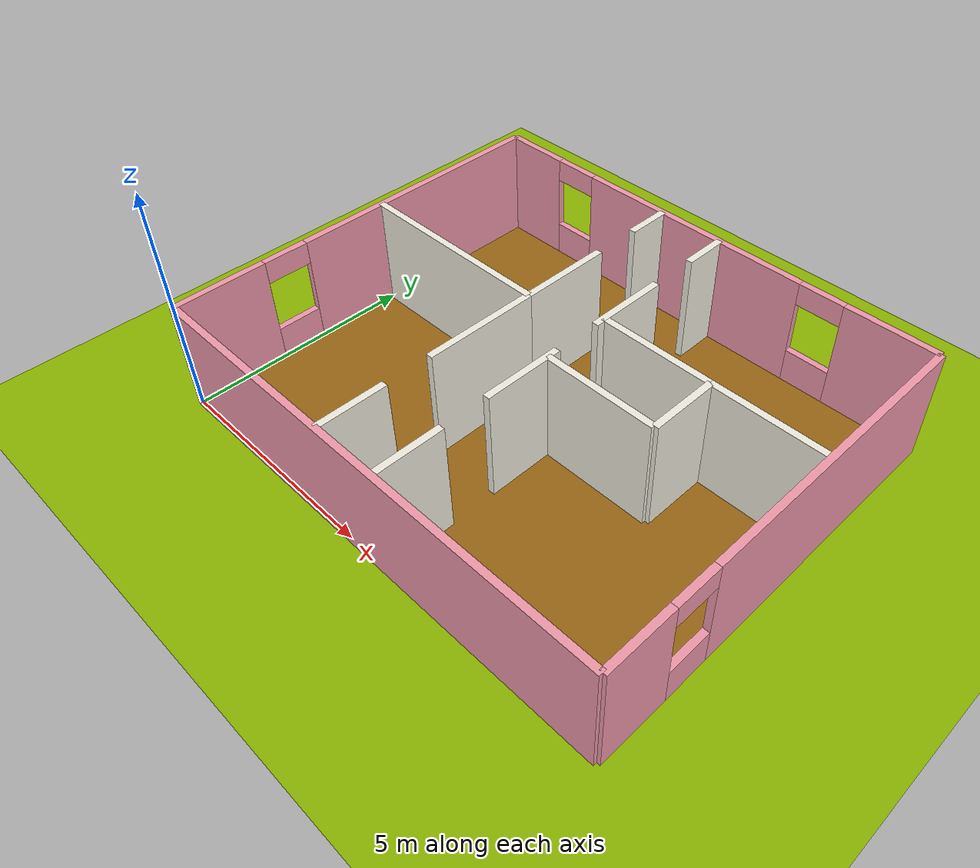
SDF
<sdf version="1.10">
 <world name="casa">
  <physics name="1ms" type="ignored">
   <max_step_size>0.001</max_step_size>
   <real_time_factor>1</real_time_factor>
   <real_time_update_rate>1000</real_time_update_rate>
  </physics>
  <plugin name="gz::sim::systems::Physics" filename="gz-sim-physics-system"/>
  <plugin name="gz::sim::systems::UserCommands" filename="gz-sim-user-commands-system"/>
  <plugin name="gz::sim::systems::SceneBroadcaster" filename="gz-sim-scene-broadcaster-system"/>
  <plugin filename="gz-sim-sensors-system" name="gz::sim::systems::Sensors">
   <render_engine>ogre2</render_engine>
  </plugin>
  <plugin filename="gz-sim-imu-system" name="gz::sim::systems::Imu"/>
  <gravity>0 0 -9.8000000000000007</gravity>
  <magnetic_field>5.5644999999999998e-06 2.2875799999999999e-05 -4.2388400000000002e-05</magnetic_field>
  <atmosphere type="adiabatic"/>
  <scene>
   <ambient>0.400000006 0.400000006 0.400000006 1</ambient>
   <background>0.699999988 0.699999988 0.699999988 1</background>
   <shadows>true</shadows>
  </scene>
  <model name="ground_plane">
   <static>true</static>
   <link name="link">
    <collision name="collision">
     <geometry><plane><normal>0 0 1</normal><size>1 1</size></plane></geometry>
    </collision>
    <visual name="visual">
     <geometry><plane><normal>0 0 1</normal><size>100 100</size></plane></geometry>
     <material>
      <ambient>0.550000012 0.709999979 0 1</ambient>
      <diffuse>0.550000012 0.709999979 0 1</diffuse>
     </material>
    </visual>
    <inertial>
     <mass>1</mass>
     <inertia><ixx>1</ixx><ixy>0</ixy><ixz>0</ixz><iyy>1</iyy><iyz>0</iyz><izz>1</izz></inertia>
    </inertial>
   </link>
  </model>
  <model name="floor">
   <static>true</static>
   <pose>5.4443202018737793 4.5 0.0099999997764825821 0 0 0</pose>
   <link name="link">
    <visual name="visual">
     <geometry><box><size>11 9 0.02</size></box></geometry>
     <material>
      <ambient>0.600000024 0.400000006 0.0799999982 1</ambient>
      <diffuse>0.600000024 0.400000006 0.0799999982 1</diffuse>
     </material>
    </visual>
    <inertial>
     <mass>1</mass>
     <inertia><ixx>1</ixx><ixy>0</ixy><ixz>0</ixz><iyy>1</iyy><iyz>0</iyz><izz>1</izz></inertia>
    </inertial>
   </link>
  </model>
  <model name="wall_ext_bottom">
   <static>true</static>
   <pose>5.5 0 1.25 0 0 0</pose>
   <link name="link">
    <collision name="collision">
     <geometry><box><size>11 0.14999999999999999 2.5</size></box></geometry>
    </collision>
    <visual name="visual">
     <geometry><box><size>11 0.14999999999999999 2.5</size></box></geometry>
     <material>
      <ambient>0.939999998 0.600000024 0.670000017 1</ambient>
      <diffuse>0.939999998 0.600000024 0.670000017 1</diffuse>
     </material>
    </visual>
    <inertial>
     <mass>1</mass>
     <inertia><ixx>1</ixx><ixy>0</ixy><ixz>0</ixz><iyy>1</iyy><iyz>0</iyz><izz>1</izz></inertia>
    </inertial>
   </link>
  </model>
  <model name="wall_ext_top_1">
   <static>true</static>
   <pose>0.75 9 1.25 0 0 0</pose>
   <link name="link">
    <collision name="collision">
     <geometry><box><size>1.5 0.14999999999999999 2.5</size></box></geometry>
    </collision>
    <visual name="visual">
     <geometry><box><size>1.5 0.14999999999999999 2.5</size></box></geometry>
     <material>
      <ambient>0.939999998 0.600000024 0.670000017 1</ambient>
      <diffuse>0.939999998 0.600000024 0.670000017 1</diffuse>
     </material>
    </visual>
    <inertial>
     <mass>1</mass>
     <inertia><ixx>1</ixx><ixy>0</ixy><ixz>0</ixz><iyy>1</iyy><iyz>0</iyz><izz>1</izz></inertia>
    </inertial>
   </link>
  </model>
  <model name="wall_ext_top_win1_sill">
   <static>true</static>
   <pose>2 9 0.40000000000000002 0 0 0</pose>
   <link name="link">
    <collision name="collision">
     <geometry><box><size>1 0.14999999999999999 0.80000000000000004</size></box></geometry>
    </collision>
    <visual name="visual">
     <geometry><box><size>1 0.14999999999999999 0.80000000000000004</size></box></geometry>
     <material>
      <ambient>0.939999998 0.600000024 0.670000017 1</ambient>
      <diffuse>0.939999998 0.600000024 0.670000017 1</diffuse>
     </material>
    </visual>
    <inertial>
     <mass>1</mass>
     <inertia><ixx>1</ixx><ixy>0</ixy><ixz>0</ixz><iyy>1</iyy><iyz>0</iyz><izz>1</izz></inertia>
    </inertial>
   </link>
  </model>
  <model name="wall_ext_top_win1_lintel">
   <static>true</static>
   <pose>2 9 2.25 0 0 0</pose>
   <link name="link">
    <collision name="collision"><geometry><box><size>1 0.14999999999999999 0.5</size></box></geometry></collision>
    <visual name="visual">
     <geometry><box><size>1 0.14999999999999999 0.5</size></box></geometry>
     <material>
      <ambient>0.939999998 0.600000024 0.670000017 1</ambient>
      <diffuse>0.939999998 0.600000024 0.670000017 1</diffuse>
     </material>
    </visual>
    <inertial>
     <mass>1</mass>
     <inertia><ixx>1</ixx><ixy>0</ixy><ixz>0</ixz><iyy>1</iyy><iyz>0</iyz><izz>1</izz></inertia>
    </inertial>
   </link>
  </model>
  <model name="wall_ext_top_2">
   <static>true</static>
   <pose>5.25 9 1.25 0 0 0</pose>
   <link name="link">
    <collision name="collision">
     <geometry><box><size>5.5 0.14999999999999999 2.5</size></box></geometry>
    </collision>
    <visual name="visual">
     <geometry><box><size>5.5 0.14999999999999999 2.5</size></box></geometry>
     <material>
      <ambient>0.939999998 0.600000024 0.670000017 1</ambient>
      <diffuse>0.939999998 0.600000024 0.670000017 1</diffuse>
     </material>
    </visual>
    <inertial>
     <mass>1</mass>
     <inertia><ixx>1</ixx><ixy>0</ixy><ixz>0</ixz><iyy>1</iyy><iyz>0</iyz><izz>1</izz></inertia>
    </inertial>
   </link>
  </model>
  <model name="wall_ext_top_win2_sill">
   <static>true</static>
   <pose>8.5 9 0.40000000000000002 0 0 0</pose>
   <link name="link">
    <collision name="collision">
     <geometry><box><size>1 0.14999999999999999 0.80000000000000004</size></box></geometry>
    </collision>
    <visual name="visual">
     <geometry><box><size>1 0.14999999999999999 0.80000000000000004</size></box></geometry>
     <material>
      <ambient>0.939999998 0.600000024 0.670000017 1</ambient>
      <diffuse>0.939999998 0.600000024 0.670000017 1</diffuse>
     </material>
    </visual>
    <inertial>
     <mass>1</mass>
     <inertia><ixx>1</ixx><ixy>0</ixy><ixz>0</ixz><iyy>1</iyy><iyz>0</iyz><izz>1</izz></inertia>
    </inertial>
   </link>
  </model>
  <model name="wall_ext_top_win2_lintel">
   <static>true</static>
   <pose>8.5 9 2.25 0 0 0</pose>
   <link name="link">
    <collision name="collision"><geometry><box><size>1 0.14999999999999999 0.5</size></box></geometry></collision>
    <visual name="visual">
     <geometry><box><size>1 0.14999999999999999 0.5</size></box></geometry>
     <material>
      <ambient>0.939999998 0.600000024 0.670000017 1</ambient>
      <diffuse>0.939999998 0.600000024 0.670000017 1</diffuse>
     </material>
    </visual>
    <inertial>
     <mass>1</mass>
     <inertia><ixx>1</ixx><ixy>0</ixy><ixz>0</ixz><iyy>1</iyy><iyz>0</iyz><izz>1</izz></inertia>
    </inertial>
   </link>
  </model>
  <model name="wall_ext_top_3">
   <static>true</static>
   <pose>10 9 1.25 0 0 0</pose>
   <link name="link">
    <collision name="collision"><geometry><box><size>2 0.14999999999999999 2.5</size></box></geometry></collision>
    <visual name="visual">
     <geometry><box><size>2 0.14999999999999999 2.5</size></box></geometry>
     <material>
      <ambient>0.939999998 0.600000024 0.670000017 1</ambient>
      <diffuse>0.939999998 0.600000024 0.670000017 1</diffuse>
     </material>
    </visual>
    <inertial>
     <mass>1</mass>
     <inertia><ixx>1</ixx><ixy>0</ixy><ixz>0</ixz><iyy>1</iyy><iyz>0</iyz><izz>1</izz></inertia>
    </inertial>
   </link>
  </model>
  <model name="wall_ext_left_1">
   <static>true</static>
   <pose>0 1 1.25 0 0 0</pose>
   <link name="link">
    <collision name="collision"><geometry><box><size>0.14999999999999999 2 2.5</size></box></geometry></collision>
    <visual name="visual">
     <geometry><box><size>0.14999999999999999 2 2.5</size></box></geometry>
     <material>
      <ambient>0.939999998 0.600000024 0.670000017 1</ambient>
      <diffuse>0.939999998 0.600000024 0.670000017 1</diffuse>
     </material>
    </visual>
    <inertial>
     <mass>1</mass>
     <inertia><ixx>1</ixx><ixy>0</ixy><ixz>0</ixz><iyy>1</iyy><iyz>0</iyz><izz>1</izz></inertia>
    </inertial>
   </link>
  </model>
  <model name="wall_ext_left_win_sill">
   <static>true</static>
   <pose>0 2.5 0.40000000000000002 0 0 0</pose>
   <link name="link">
    <collision name="collision">
     <geometry><box><size>0.14999999999999999 1 0.80000000000000004</size></box></geometry>
    </collision>
    <visual name="visual">
     <geometry><box><size>0.14999999999999999 1 0.80000000000000004</size></box></geometry>
     <material>
      <ambient>0.939999998 0.600000024 0.670000017 1</ambient>
      <diffuse>0.939999998 0.600000024 0.670000017 1</diffuse>
     </material>
    </visual>
    <inertial>
     <mass>1</mass>
     <inertia><ixx>1</ixx><ixy>0</ixy><ixz>0</ixz><iyy>1</iyy><iyz>0</iyz><izz>1</izz></inertia>
    </inertial>
   </link>
  </model>
  <model name="wall_ext_left_win_lintel">
   <static>true</static>
   <pose>0 2.5 2.25 0 0 0</pose>
   <link name="link">
    <collision name="collision"><geometry><box><size>0.14999999999999999 1 0.5</size></box></geometry></collision>
    <visual name="visual">
     <geometry><box><size>0.14999999999999999 1 0.5</size></box></geometry>
     <material>
      <ambient>0.939999998 0.600000024 0.670000017 1</ambient>
      <diffuse>0.939999998 0.600000024 0.670000017 1</diffuse>
     </material>
    </visual>
    <inertial>
     <mass>1</mass>
     <inertia><ixx>1</ixx><ixy>0</ixy><ixz>0</ixz><iyy>1</iyy><iyz>0</iyz><izz>1</izz></inertia>
    </inertial>
   </link>
  </model>
  <model name="wall_ext_left_2">
   <static>true</static>
   <pose>0 6 1.25 0 0 0</pose>
   <link name="link">
    <collision name="collision"><geometry><box><size>0.14999999999999999 6 2.5</size></box></geometry></collision>
    <visual name="visual">
     <geometry><box><size>0.14999999999999999 6 2.5</size></box></geometry>
     <material>
      <ambient>0.939999998 0.600000024 0.670000017 1</ambient>
      <diffuse>0.939999998 0.600000024 0.670000017 1</diffuse>
     </material>
    </visual>
    <inertial>
     <mass>1</mass>
     <inertia><ixx>1</ixx><ixy>0</ixy><ixz>0</ixz><iyy>1</iyy><iyz>0</iyz><izz>1</izz></inertia>
    </inertial>
   </link>
  </model>
  <model name="wall_ext_right_1">
   <static>true</static>
   <pose>11 0.75 1.25 0 0 0</pose>
   <link name="link">
    <collision name="collision">
     <geometry><box><size>0.14999999999999999 1.5 2.5</size></box></geometry>
    </collision>
    <visual name="visual">
     <geometry><box><size>0.14999999999999999 1.5 2.5</size></box></geometry>
     <material>
      <ambient>0.939999998 0.600000024 0.670000017 1</ambient>
      <diffuse>0.939999998 0.600000024 0.670000017 1</diffuse>
     </material>
    </visual>
    <inertial>
     <mass>1</mass>
     <inertia><ixx>1</ixx><ixy>0</ixy><ixz>0</ixz><iyy>1</iyy><iyz>0</iyz><izz>1</izz></inertia>
    </inertial>
   </link>
  </model>
  <model name="wall_ext_right_win_sill">
   <static>true</static>
   <pose>11 2 0.40000000000000002 0 0 0</pose>
   <link name="link">
    <collision name="collision">
     <geometry><box><size>0.14999999999999999 1 0.80000000000000004</size></box></geometry>
    </collision>
    <visual name="visual">
     <geometry><box><size>0.14999999999999999 1 0.80000000000000004</size></box></geometry>
     <material>
      <ambient>0.939999998 0.600000024 0.670000017 1</ambient>
      <diffuse>0.939999998 0.600000024 0.670000017 1</diffuse>
     </material>
    </visual>
    <inertial>
     <mass>1</mass>
     <inertia><ixx>1</ixx><ixy>0</ixy><ixz>0</ixz><iyy>1</iyy><iyz>0</iyz><izz>1</izz></inertia>
    </inertial>
   </link>
  </model>
  <model name="wall_ext_right_win_lintel">
   <static>true</static>
   <pose>11 2 2.25 0 0 0</pose>
   <link name="link">
    <collision name="collision"><geometry><box><size>0.14999999999999999 1 0.5</size></box></geometry></collision>
    <visual name="visual">
     <geometry><box><size>0.14999999999999999 1 0.5</size></box></geometry>
     <material>
      <ambient>0.939999998 0.600000024 0.670000017 1</ambient>
      <diffuse>0.939999998 0.600000024 0.670000017 1</diffuse>
     </material>
    </visual>
    <inertial>
     <mass>1</mass>
     <inertia><ixx>1</ixx><ixy>0</ixy><ixz>0</ixz><iyy>1</iyy><iyz>0</iyz><izz>1</izz></inertia>
    </inertial>
   </link>
  </model>
  <model name="wall_ext_right_2">
   <static>true</static>
   <pose>11 5.75 1.25 0 0 0</pose>
   <link name="link">
    <collision name="collision">
     <geometry><box><size>0.14999999999999999 6.5 2.5</size></box></geometry>
    </collision>
    <visual name="visual">
     <geometry><box><size>0.14999999999999999 6.5 2.5</size></box></geometry>
     <material>
      <ambient>0.939999998 0.600000024 0.670000017 1</ambient>
      <diffuse>0.939999998 0.600000024 0.670000017 1</diffuse>
     </material>
    </visual>
    <inertial>
     <mass>1</mass>
     <inertia><ixx>1</ixx><ixy>0</ixy><ixz>0</ixz><iyy>1</iyy><iyz>0</iyz><izz>1</izz></inertia>
    </inertial>
   </link>
  </model>
  <model name="wall_corr_left_1">
   <static>true</static>
   <pose>4.5 0.75 1.25 0 0 0</pose>
   <link name="link">
    <collision name="collision">
     <geometry><box><size>0.14999999999999999 1.5 2.5</size></box></geometry>
    </collision>
    <visual name="visual">
     <geometry><box><size>0.14999999999999999 1.5 2.5</size></box></geometry>
     <material>
      <ambient>0.949999988 0.930000007 0.879999995 1</ambient>
      <diffuse>0.949999988 0.930000007 0.879999995 1</diffuse>
     </material>
    </visual>
    <inertial>
     <mass>1</mass>
     <inertia><ixx>1</ixx><ixy>0</ixy><ixz>0</ixz><iyy>1</iyy><iyz>0</iyz><izz>1</izz></inertia>
    </inertial>
   </link>
  </model>
  <model name="wall_corr_left_2">
   <static>true</static>
   <pose>4.5 3.75 1.25 0 0 0</pose>
   <link name="link">
    <collision name="collision">
     <geometry><box><size>0.14999999999999999 2.5 2.5</size></box></geometry>
    </collision>
    <visual name="visual">
     <geometry><box><size>0.14999999999999999 2.5 2.5</size></box></geometry>
     <material>
      <ambient>0.949999988 0.930000007 0.879999995 1</ambient>
      <diffuse>0.949999988 0.930000007 0.879999995 1</diffuse>
     </material>
    </visual>
    <inertial>
     <mass>1</mass>
     <inertia><ixx>1</ixx><ixy>0</ixy><ixz>0</ixz><iyy>1</iyy><iyz>0</iyz><izz>1</izz></inertia>
    </inertial>
   </link>
  </model>
  <model name="wall_corr_left_3">
   <static>true</static>
   <pose>4.5 6 1.25 0 0 0</pose>
   <link name="link">
    <collision name="collision"><geometry><box><size>0.14999999999999999 2 2.5</size></box></geometry></collision>
    <visual name="visual">
     <geometry><box><size>0.14999999999999999 2 2.5</size></box></geometry>
     <material>
      <ambient>0.949999988 0.930000007 0.879999995 1</ambient>
      <diffuse>0.949999988 0.930000007 0.879999995 1</diffuse>
     </material>
    </visual>
    <inertial>
     <mass>1</mass>
     <inertia><ixx>1</ixx><ixy>0</ixy><ixz>0</ixz><iyy>1</iyy><iyz>0</iyz><izz>1</izz></inertia>
    </inertial>
   </link>
  </model>
  <model name="wall_corr_left_4">
   <static>true</static>
   <pose>4.5 8.5 1.25 0 0 0</pose>
   <link name="link">
    <collision name="collision"><geometry><box><size>0.14999999999999999 1 2.5</size></box></geometry></collision>
    <visual name="visual">
     <geometry><box><size>0.14999999999999999 1 2.5</size></box></geometry>
     <material>
      <ambient>0.949999988 0.930000007 0.879999995 1</ambient>
      <diffuse>0.949999988 0.930000007 0.879999995 1</diffuse>
     </material>
    </visual>
    <inertial>
     <mass>1</mass>
     <inertia><ixx>1</ixx><ixy>0</ixy><ixz>0</ixz><iyy>1</iyy><iyz>0</iyz><izz>1</izz></inertia>
    </inertial>
   </link>
  </model>
  <model name="wall_corr_right_1">
   <static>true</static>
   <pose>6 0.75 1.25 0 0 0</pose>
   <link name="link">
    <collision name="collision">
     <geometry><box><size>0.14999999999999999 1.5 2.5</size></box></geometry>
    </collision>
    <visual name="visual">
     <geometry><box><size>0.14999999999999999 1.5 2.5</size></box></geometry>
     <material>
      <ambient>0.949999988 0.930000007 0.879999995 1</ambient>
      <diffuse>0.949999988 0.930000007 0.879999995 1</diffuse>
     </material>
    </visual>
    <inertial>
     <mass>1</mass>
     <inertia><ixx>1</ixx><ixy>0</ixy><ixz>0</ixz><iyy>1</iyy><iyz>0</iyz><izz>1</izz></inertia>
    </inertial>
   </link>
  </model>
  <model name="wall_corr_right_2">
   <static>true</static>
   <pose>6 3.375 1.25 0 0 0</pose>
   <link name="link">
    <collision name="collision">
     <geometry><box><size>0.14999999999999999 1.75 2.5</size></box></geometry>
    </collision>
    <visual name="visual">
     <geometry><box><size>0.14999999999999999 1.75 2.5</size></box></geometry>
     <material>
      <ambient>0.949999988 0.930000007 0.879999995 1</ambient>
      <diffuse>0.949999988 0.930000007 0.879999995 1</diffuse>
     </material>
    </visual>
    <inertial>
     <mass>1</mass>
     <inertia><ixx>1</ixx><ixy>0</ixy><ixz>0</ixz><iyy>1</iyy><iyz>0</iyz><izz>1</izz></inertia>
    </inertial>
   </link>
  </model>
  <model name="wall_corr_right_3">
   <static>true</static>
   <pose>6 6.125 1.25 0 0 0</pose>
   <link name="link">
    <collision name="collision">
     <geometry><box><size>0.14999999999999999 1.75 2.5</size></box></geometry>
    </collision>
    <visual name="visual">
     <geometry><box><size>0.14999999999999999 1.75 2.5</size></box></geometry>
     <material>
      <ambient>0.949999988 0.930000007 0.879999995 1</ambient>
      <diffuse>0.949999988 0.930000007 0.879999995 1</diffuse>
     </material>
    </visual>
    <inertial>
     <mass>1</mass>
     <inertia><ixx>1</ixx><ixy>0</ixy><ixz>0</ixz><iyy>1</iyy><iyz>0</iyz><izz>1</izz></inertia>
    </inertial>
   </link>
  </model>
  <model name="wall_corr_right_4">
   <static>true</static>
   <pose>6 8.5 1.25 0 0 0</pose>
   <link name="link">
    <collision name="collision"><geometry><box><size>0.14999999999999999 1 2.5</size></box></geometry></collision>
    <visual name="visual">
     <geometry><box><size>0.14999999999999999 1 2.5</size></box></geometry>
     <material>
      <ambient>0.949999988 0.930000007 0.879999995 1</ambient>
      <diffuse>0.949999988 0.930000007 0.879999995 1</diffuse>
     </material>
    </visual>
    <inertial>
     <mass>1</mass>
     <inertia><ixx>1</ixx><ixy>0</ixy><ixz>0</ixz><iyy>1</iyy><iyz>0</iyz><izz>1</izz></inertia>
    </inertial>
   </link>
  </model>
  <model name="wall_div_sala_q1">
   <static>true</static>
   <pose>2.25 5 1.25 0 0 0</pose>
   <link name="link">
    <collision name="collision">
     <geometry><box><size>4.5 0.14999999999999999 2.5</size></box></geometry>
    </collision>
    <visual name="visual">
     <geometry><box><size>4.5 0.14999999999999999 2.5</size></box></geometry>
     <material>
      <ambient>0.949999988 0.930000007 0.879999995 1</ambient>
      <diffuse>0.949999988 0.930000007 0.879999995 1</diffuse>
     </material>
    </visual>
    <inertial>
     <mass>1</mass>
     <inertia><ixx>1</ixx><ixy>0</ixy><ixz>0</ixz><iyy>1</iyy><iyz>0</iyz><izz>1</izz></inertia>
    </inertial>
   </link>
  </model>
  <model name="wall_div_coz_bath">
   <static>true</static>
   <pose>7.25 4 1.25 0 0 0</pose>
   <link name="link">
    <collision name="collision">
     <geometry><box><size>2.5 0.14999999999999999 2.5</size></box></geometry>
    </collision>
    <visual name="visual">
     <geometry><box><size>2.5 0.14999999999999999 2.5</size></box></geometry>
     <material>
      <ambient>0.949999988 0.930000007 0.879999995 1</ambient>
      <diffuse>0.949999988 0.930000007 0.879999995 1</diffuse>
     </material>
    </visual>
    <inertial>
     <mass>1</mass>
     <inertia><ixx>1</ixx><ixy>0</ixy><ixz>0</ixz><iyy>1</iyy><iyz>0</iyz><izz>1</izz></inertia>
    </inertial>
   </link>
  </model>
  <model name="wall_bath_top">
   <static>true</static>
   <pose>7.25 5.5 1.25 0 0 0</pose>
   <link name="link">
    <collision name="collision">
     <geometry><box><size>2.5 0.14999999999999999 2.5</size></box></geometry>
    </collision>
    <visual name="visual">
     <geometry><box><size>2.5 0.14999999999999999 2.5</size></box></geometry>
     <material>
      <ambient>0.949999988 0.930000007 0.879999995 1</ambient>
      <diffuse>0.949999988 0.930000007 0.879999995 1</diffuse>
     </material>
    </visual>
    <inertial>
     <mass>1</mass>
     <inertia><ixx>1</ixx><ixy>0</ixy><ixz>0</ixz><iyy>1</iyy><iyz>0</iyz><izz>1</izz></inertia>
    </inertial>
   </link>
  </model>
  <model name="wall_bath_right">
   <static>true</static>
   <pose>8.5165395736694336 4.75 1.25 0 0 0</pose>
   <link name="link">
    <collision name="collision">
     <geometry><box><size>0.14999999999999999 1.5 2.5</size></box></geometry>
    </collision>
    <visual name="visual">
     <geometry><box><size>0.14999999999999999 1.5 2.5</size></box></geometry>
     <material>
      <ambient>0.949999988 0.930000007 0.879999995 1</ambient>
      <diffuse>0.949999988 0.930000007 0.879999995 1</diffuse>
     </material>
    </visual>
    <inertial>
     <mass>1</mass>
     <inertia><ixx>1</ixx><ixy>0</ixy><ixz>0</ixz><iyy>1</iyy><iyz>0</iyz><izz>1</izz></inertia>
    </inertial>
   </link>
  </model>
  <model name="wall_div_q2_coz">
   <static>true</static>
   <pose>9.75 5.5 1.25 0 0 0</pose>
   <link name="link">
    <collision name="collision">
     <geometry><box><size>2.5 0.14999999999999999 2.5</size></box></geometry>
    </collision>
    <visual name="visual">
     <geometry><box><size>2.5 0.14999999999999999 2.5</size></box></geometry>
     <material>
      <ambient>0.949999988 0.930000007 0.879999995 1</ambient>
      <diffuse>0.949999988 0.930000007 0.879999995 1</diffuse>
     </material>
    </visual>
    <inertial>
     <mass>1</mass>
     <inertia><ixx>1</ixx><ixy>0</ixy><ixz>0</ixz><iyy>1</iyy><iyz>0</iyz><izz>1</izz></inertia>
    </inertial>
   </link>
  </model>
  <light name="sun" type="directional">
   <pose>0 0 10 0 0 0</pose>
   <intensity>1</intensity>
   <direction>-0.5 0.10000000000000001 -0.90000000000000002</direction>
   <diffuse>0.800000012 0.800000012 0.800000012 1</diffuse>
   <specular>0.200000003 0.200000003 0.200000003 1</specular>
   <attenuation>
    <range>1000</range>
    <linear>0.01</linear>
    <constant>0.90000000000000002</constant>
    <quadratic>0.001</quadratic>
   </attenuation>
   <spot><inner_angle>0</inner_angle><outer_angle>0</outer_angle><falloff>0</falloff></spot>
  </light>
 </world>
</sdf>
